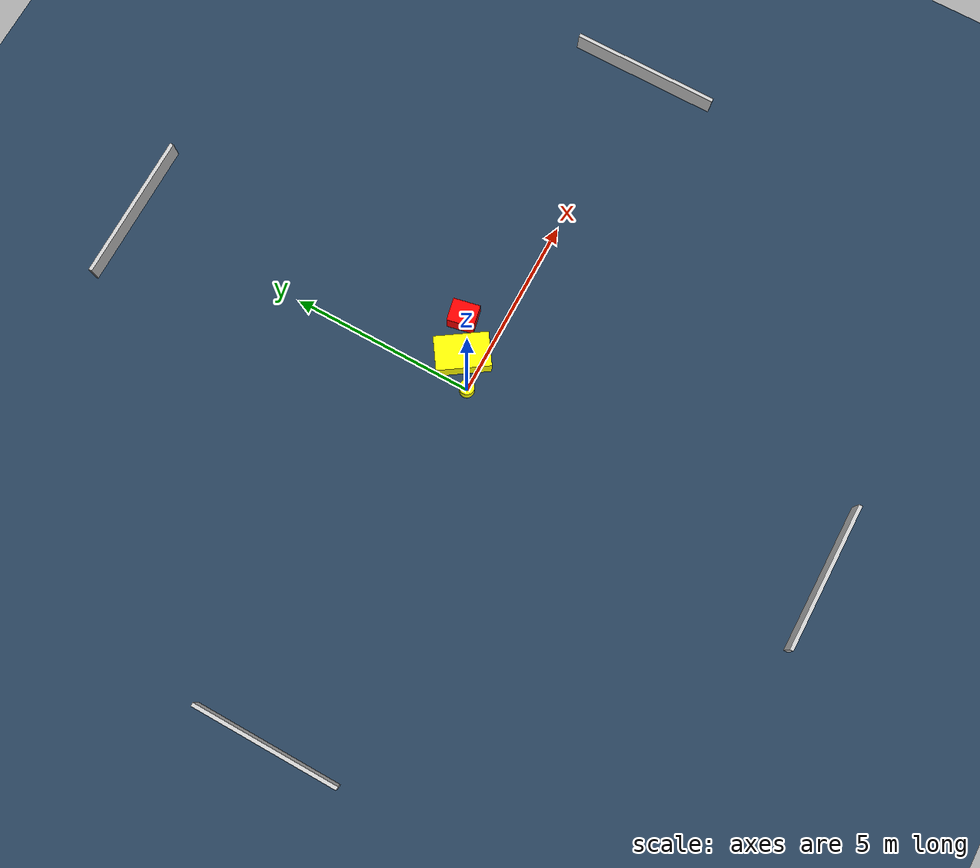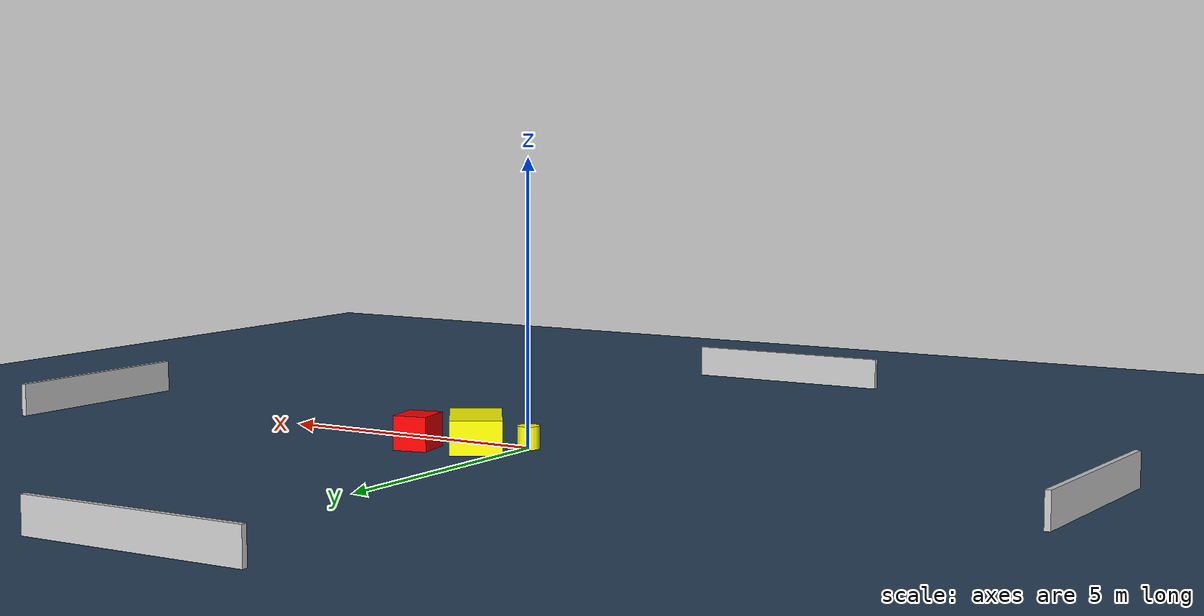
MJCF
<?xml version="1.0" ?>
<mujoco model="generated_environment">
  <option timestep="0.01" integrator="RK4" cone="elliptic"/>
  <default>
    <geom density="1"/>
  </default>
  <asset>
    <texture builtin="gradient" height="3072" name="skybox" rgb1="0.3 0.5 0.7" rgb2="0 0 0" type="skybox" width="512"/>
    <texture builtin="checker" height="300" name="groundplane" rgb1="0.2 0.3 0.4" rgb2="0.1 0.2 0.3" type="2d" width="300"/>
    <material name="groundplane" reflectance="0.2" texrepeat="5 5" texture="groundplane"/>
  </asset>
  <worldbody>
    <light dir="0 0 -1" directional="true" pos="0 0 1.5"/>
    <geom condim="3" friction="0.5 0.005 0.001" material="groundplane" name="floor" pos="0 0 0" size="0 0 0.05" type="plane"/>
    <body name="walls">
      <geom name="wall_1" condim="4" pos="-10.0 0.0 0.3" rgba="0.800000011920929 0.800000011920929 0.800000011920929 1.0" size="0.05 2.0 0.3" type="box"/>
      <geom name="wall_2" condim="4" pos="10.0 0.0 0.3" rgba="0.800000011920929 0.800000011920929 0.800000011920929 1.0" size="0.05 2.0 0.3" type="box"/>
      <geom name="wall_3" condim="4" pos="0.0 -10.0 0.3" rgba="0.800000011920929 0.800000011920929 0.800000011920929 1.0" size="2.0 0.05 0.3" type="box"/>
      <geom name="wall_4" condim="4" pos="0.0 10.0 0.3" rgba="0.800000011920929 0.800000011920929 0.800000011920929 1.0" size="2.0 0.05 0.3" type="box"/>
    </body>
    <body name="robot">
      <joint name="joint_x" type="slide" pos="0 0 0" axis="1 0 0"/>
      <joint name="joint_y" type="slide" pos="0 0 0" axis="0 1 0"/>
      <geom name="robot" type="cylinder" pos="0.0 0.0 0.2" size="0.2 0.2 0.0" mass="5.0" friction="1.0 0.005 0.0001" condim="4" rgba="1.0 1.0 0.0 1.0"/>
    </body>
    <body name="obstacle_1_movable">
      <geom name="obstacle_1_movable" condim="4" pos="0.7309840422588014 0.5333322525968227 0.3" euler="0 0 33.851193802332084" friction="0.0 0.005 0.001" rgba="1.0 1.0 0.0 1.0" size="0.45347696531275156 0.7166944702895028 0.3" type="box" mass="0.1"/>
      <joint type="free"/>
    </body>
    <body name="obstacle_2_static">
      <geom name="obstacle_2_static" condim="4" pos="1.6289058490644832 0.99297113675608 0.3" euler="0 0 281.66037991391835" friction="0.0 0.005 0.001" rgba="1.0 0.0 0.0 1.0" size="0.3621287464113033 0.30465741378752403 0.3" type="box"/>
    </body>
  </worldbody>
  <actuator>
    <motor name="actuator_x" joint="joint_x" gear="1" ctrlrange="-1 1"/>
    <motor name="actuator_y" joint="joint_y" gear="1" ctrlrange="-1 1"/>
  </actuator>
</mujoco>
